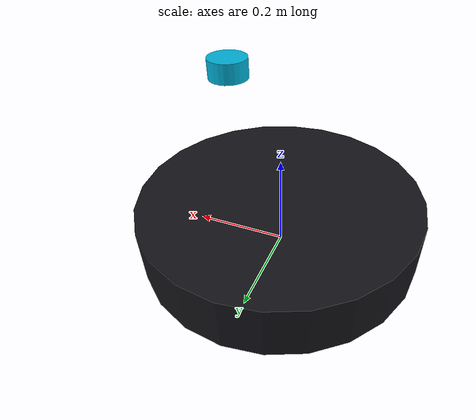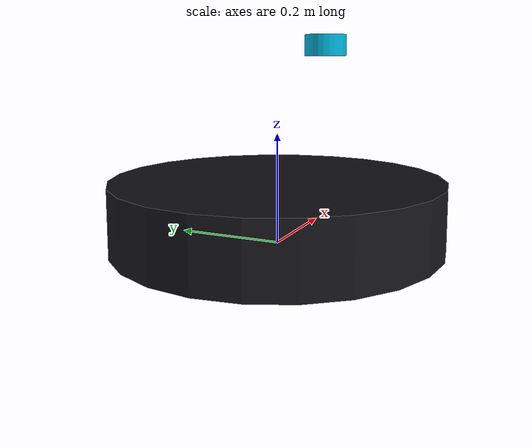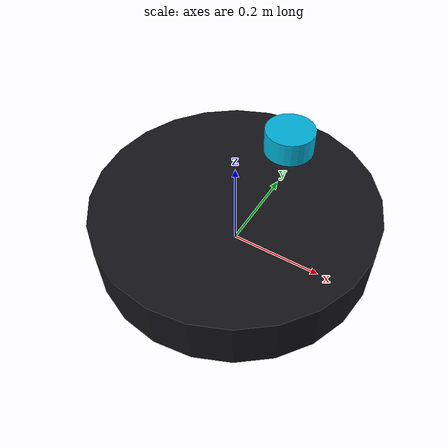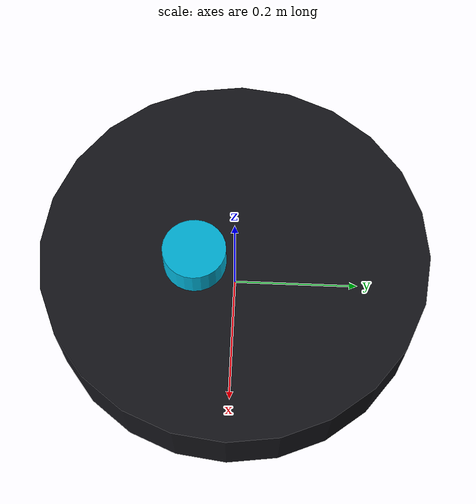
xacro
<?xml version="1.0"?>
<robot name="cryvex_real" xmlns:xacro="http://www.ros.org/wiki/xacro">

  <xacro:property name="footprint_radius" value="0.30"/>  <!-- 2026-10-02: govde 52 cm daire + tasan tekerler -->
  <xacro:property name="base_height" value="0.12"/>
  <xacro:property name="lidar_height" value="0.36"/>  <!-- malzeme listesi rev.4, bolum 5: "yerden ~20-30 cm" -->
  <xacro:property name="lidar_x" value="0.125"/>
  <xacro:property name="lidar_y" value="-0.045"/>
  <xacro:property name="lidar_yaw" value="${radians(-90)}"/>

  <material name="cryvex_dark">
    <color rgba="0.08 0.08 0.10 1.0"/>
  </material>
  <material name="cryvex_cyan">
    <color rgba="0.0 0.7 0.85 1.0"/>
  </material>

  <!-- REP-120: base_footprint zeminin izdüşümü, gercek gövde base_link -->
  <link name="base_footprint"/>

  <link name="base_link">
    <visual>
      <origin xyz="0 0 ${base_height/2}" rpy="0 0 0"/>
      <geometry>
        <cylinder radius="${footprint_radius}" length="${base_height}"/>
      </geometry>
      <material name="cryvex_dark"/>
    </visual>
    <collision>
      <origin xyz="0 0 ${base_height/2}" rpy="0 0 0"/>
      <geometry>
        <cylinder radius="${footprint_radius}" length="${base_height}"/>
      </geometry>
    </collision>
  </link>

  <joint name="base_footprint_to_base_link" type="fixed">
    <parent link="base_footprint"/>
    <child link="base_link"/>
    <origin xyz="0 0 0" rpy="0 0 0"/>
  </joint>

  <!-- YDLIDAR T-mini Plus - config/ydlidar_tmini_plus.yaml frame_id ile AYNI isim -->
  <link name="lidar_link">
    <visual>
      <geometry>
        <cylinder radius="0.04" length="0.04"/>
      </geometry>
      <material name="cryvex_cyan"/>
    </visual>
  </link>

  <joint name="base_link_to_lidar" type="fixed">
    <parent link="base_link"/>
    <child link="lidar_link"/>
    <origin xyz="${lidar_x} ${lidar_y} ${lidar_height}" rpy="0 0 ${lidar_yaw}"/>
  </joint>

  <xacro:property name="sonar_x" value="0.30"/>     <!-- merkezden one/arkaya (m) -->
  <xacro:property name="sonar_y" value="0.13"/>     <!-- merkezden sola/saga (m) -->
  <xacro:property name="sonar_z" value="0.10"/>     <!-- zeminden yukseklik (m) -->
  <xacro:property name="sonar_yaw" value="0.30"/>   <!-- ice donukluk (rad, ~17 derece) -->

  <xacro:macro name="sonar" params="name x y yaw">
    <link name="sonar_${name}_link"/>
    <joint name="base_link_to_sonar_${name}" type="fixed">
      <parent link="base_link"/>
      <child link="sonar_${name}_link"/>
      <origin xyz="${x} ${y} ${sonar_z}" rpy="0 0 ${yaw}"/>
    </joint>
  </xacro:macro>

  <xacro:sonar name="fl" x="${sonar_x}"  y="${sonar_y}"  yaw="${sonar_yaw}"/>
  <xacro:sonar name="fr" x="${sonar_x}"  y="${-sonar_y}" yaw="${-sonar_yaw}"/>
  <xacro:sonar name="rl" x="${-sonar_x}" y="${sonar_y}"  yaw="${pi - sonar_yaw}"/>
  <xacro:sonar name="rr" x="${-sonar_x}" y="${-sonar_y}" yaw="${-pi + sonar_yaw}"/>

  <!-- MPU6050 - stm32_bridge.py sadece Z ekseni acisal hizini yayinliyor,
       konum onemsiz; kart DUZ (Z yukari) monte edilmezse buraya rpy eklenmeli. -->
  <link name="imu_link"/>

  <joint name="base_link_to_imu" type="fixed">
    <parent link="base_link"/>
    <child link="imu_link"/>
    <origin xyz="0 0 ${base_height/2}" rpy="0 0 0"/>
  </joint>

</robot>
